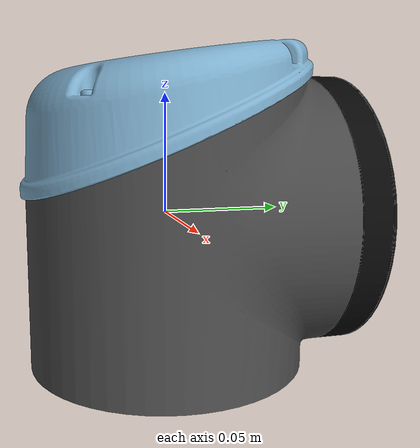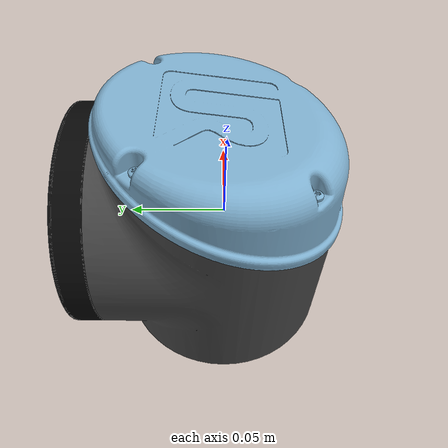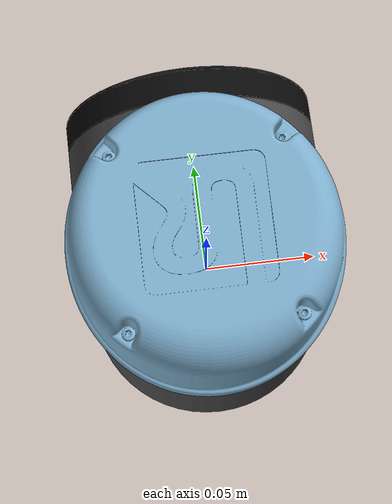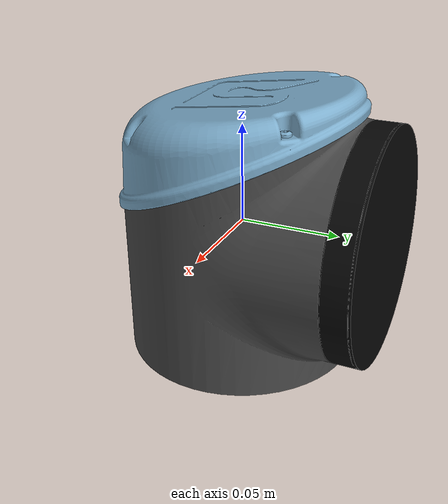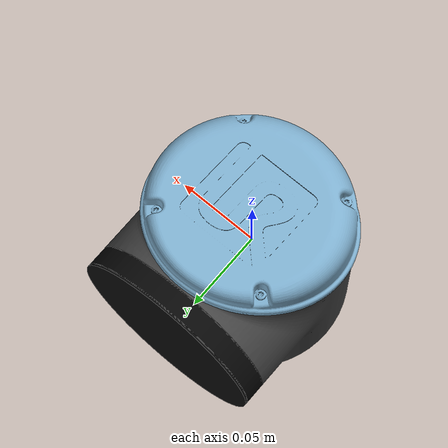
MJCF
<mujoco model="shoulder">
  <default>
    <default class="visual">
      <geom group="2" type="mesh" contype="0" conaffinity="0"/>
    </default>
    <default class="collision">
      <geom group="3" type="mesh"/>
    </default>
  </default>
  <asset>
    <material name="material_shoulder_0" specular="0.20000000000000004" shininess="1.0" rgba="0.27843137 0.27843137 0.27843137 1.0"/>
    <material name="material_shoulder_1" specular="0.20000000000000004" shininess="1.0" rgba="0.03137255 0.03137255 0.03137255 1.0"/>
    <material name="material_shoulder_2" specular="0.20000000000000004" shininess="1.0" rgba="0.49019608 0.67843137 0.80000000 1.0"/>
    <mesh file="shoulder_0.obj"/>
    <mesh file="shoulder_1.obj"/>
    <mesh file="shoulder_2.obj"/>
  </asset>
  <worldbody>
    <body name="shoulder">
      <geom mesh="shoulder_0" material="material_shoulder_2" class="visual"/>
      <geom mesh="shoulder_1" material="material_shoulder_1" class="visual"/>
      <geom mesh="shoulder_2" material="material_shoulder_0" class="visual"/>
      <geom mesh="shoulder_0" class="collision"/>
      <geom mesh="shoulder_1" class="collision"/>
      <geom mesh="shoulder_2" class="collision"/>
    </body>
  </worldbody>
</mujoco>
